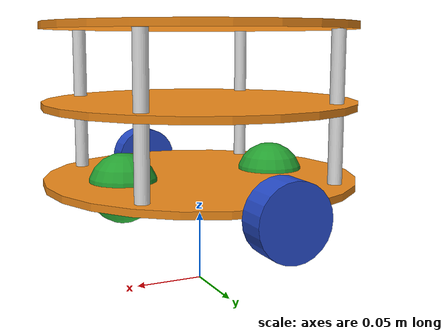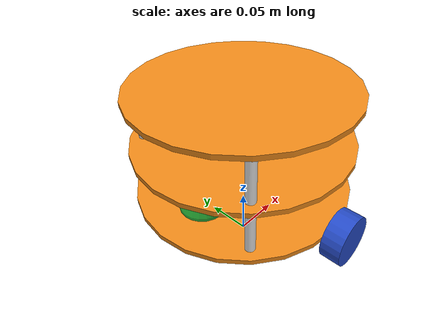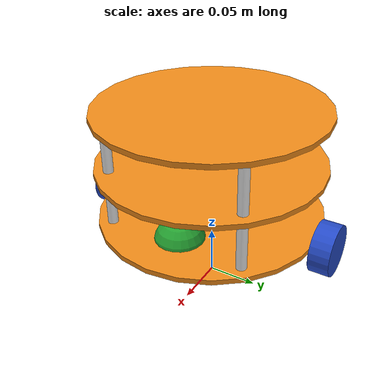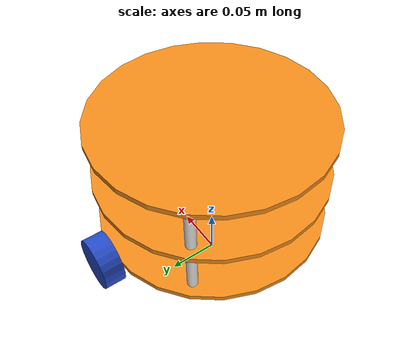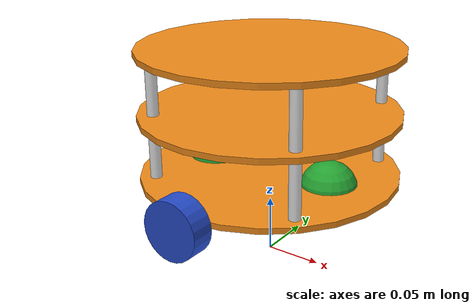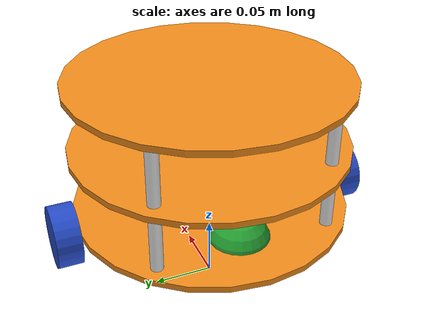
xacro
<?xml version="1.0"?>
<robot xmlns:xacro="http://www.ros.org/wiki/xacro">
    <!--
        ##################################################
            include other xacro files
        ##################################################
    -->

    <xacro:include filename="robot_parts/base_plate.xacro"/>
    <xacro:include filename="robot_parts/pillar.xacro"/>
    <xacro:include filename="robot_parts/drive_wheel.xacro"/>
    <xacro:include filename="robot_parts/caster_wheel.xacro"/>

    <!--
        ##################################################
            Base Link
        ##################################################
    -->

    <link name="base_link"/>

    <!--
        ##################################################
            Base Footprint Link
        ##################################################
    -->

    <joint name="base_footprint_joint" type="fixed">
        <parent link="base_link"/>
        <child link="base_footprint"/>
        <origin xyz="0 0 0" rpy="0 0 0"/>
    </joint>

    <link name="base_footprint"/>

    <xacro:robot_base_plate
        parent="base_link"
        child="first_base_plate_link"
        x="-0.1143" y="0" z="0.075"
        row="0" pitch="0" yaw="0"
    />

    <xacro:robot_base_plate
        parent="first_base_plate_link"
        child="second_base_plate_link"
        x="0" y="0" z="0.0558"
        row="0" pitch="0" yaw="0"
    />

    <xacro:robot_base_plate
        parent="second_base_plate_link"
        child="third_base_plate_link"
        x="0" y="0" z="0.0558"
        row="0" pitch="0" yaw="0"
    />

    <!--
        ##################################################
            Pillar offset variables
        ##################################################
    -->

    <xacro:property name="pillar_x_front" value="0.1851"/>
    <xacro:property name="pillar_x_back" value="0.0435"/>
    <xacro:property name="pillar_y_offset" value="0.0708"/>
    <xacro:property name="pillar_z_offset" value="0.005"/>

    <!--
        ##################################################
            Pillars for Base Plate 0
        ##################################################
    -->

    <xacro:robot_pillar
        parent="first_base_plate_link"
        child="first_base_plate_front_right_pillar_link"
        x="${pillar_x_front}" y="${pillar_y_offset}" z="${pillar_z_offset}"
        row="0" pitch="0" yaw="0"
    />

    <xacro:robot_pillar
        parent="first_base_plate_link"
        child="first_base_plate_front_left_pillar_link"
        x="${pillar_x_front}" y="${-pillar_y_offset}" z="${pillar_z_offset}"
        row="0" pitch="0" yaw="0"
    />

    <xacro:robot_pillar
        parent="first_base_plate_link"
        child="first_base_plate_back_right_pillar_link"
        x="${pillar_x_back}" y="${pillar_y_offset}" z="${pillar_z_offset}"
        row="0" pitch="0" yaw="0"
    />

    <xacro:robot_pillar
        parent="first_base_plate_link"
        child="first_base_plate_back_left_pillar_link"
        x="${pillar_x_back}" y="${-pillar_y_offset}" z="${pillar_z_offset}"
        row="0" pitch="0" yaw="0"
    />

    <!--
        ##################################################
            Pillars for Base Plate 1
        ##################################################
    -->

    <xacro:robot_pillar
        parent="second_base_plate_link"
        child="second_base_plate_front_right_pillar_link"
        x="${pillar_x_front}" y="${pillar_y_offset}" z="${pillar_z_offset}"
        row="0" pitch="0" yaw="0"
    />

    <xacro:robot_pillar
        parent="second_base_plate_link"
        child="second_base_plate_front_left_pillar_link"
        x="${pillar_x_front}" y="${-pillar_y_offset}" z="${pillar_z_offset}"
        row="0" pitch="0" yaw="0"
    />

    <xacro:robot_pillar
        parent="second_base_plate_link"
        child="second_base_plate_back_right_pillar_link"
        x="${pillar_x_back}" y="${pillar_y_offset}" z="${pillar_z_offset}"
        row="0" pitch="0" yaw="0"
    />

    <xacro:robot_pillar
        parent="second_base_plate_link"
        child="second_base_plate_back_left_pillar_link"
        x="${pillar_x_back}" y="${-pillar_y_offset}" z="${pillar_z_offset}"
        row="0" pitch="0" yaw="0"
    />

    <!--
        ##################################################
            Drive Wheels
        ##################################################
    -->

    <xacro:robot_wheel
        parent="base_link"
        child="left_wheel_link"
        x="0" y="0.124" z="0.075"
        row="${-pi/2}" pitch="0" yaw="0"
        a="0" b="0" c="1"
    />

    <xacro:robot_wheel
        parent="base_link"
        child="right_wheel_link"
        x="0" y="-0.124" z="0.075"
        row="${pi/2}" pitch="0" yaw="0"
        a="0" b="0" c="-1"
    />

    <xacro:robot_caster_wheel
        parent="first_base_plate_link"
        child="front_caster_wheel_link"
        x="0.174" y="0" z="0"
    />

    <xacro:robot_caster_wheel
        parent="first_base_plate_link"
        child="back_caster_wheel_link"
        x="0.0546" y="0" z="0"
    />

</robot>

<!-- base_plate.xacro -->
<robot xmlns:xacro="http://www.ros.org/wiki/xacro">
    <!-- user-defined parameters for the base plate -->
    <xacro:property name="plate_radius" value="0.1143"/>
    <xacro:property name="plate_length" value="0.005"/>
    <xacro:property name="plate_mass" value="0.5"/>
    <xacro:property name="I_plate" value="${(1/12) * (plate_mass) * ((3 * plate_radius * plate_radius) + (plate_length * plate_length))}"/>
    <xacro:property name="Iz_plate" value="${(1/2) * (plate_mass) * (plate_radius * plate_radius)}"/>

    <!-- base plate with user-defined parameters -->
    <xacro:macro name="robot_base_plate" params="parent child x y z row pitch yaw">

        <!-- joint -->
        <joint name="${child}_joint" type="fixed">
            <parent link="${parent}"/>
            <child link="${child}"/>
            <origin xyz="${x} ${y} ${z}" rpy="${row} ${pitch} ${yaw}"/>
        </joint>

        <!-- link -->
        <link name="${child}">
            <!-- visual -->
            <visual>
                <origin xyz="${plate_radius} 0 ${plate_length/2}" rpy="0 0 0"/>
                <geometry>
                    <cylinder radius="${plate_radius}" length="${plate_length}"/>
                </geometry>
                <material name="orange"/>
            </visual>

            <!-- collision -->
            <collision>
                <origin xyz="${plate_radius} 0 ${plate_length/2}" rpy="0 0 0"/>
                <geometry>
                    <cylinder radius="${plate_radius}" length="${plate_length}"/>
                </geometry>
            </collision>

            <!-- inertia -->
            <inertial>
                <origin xyz="${plate_radius} 0 ${plate_length/2}" rpy="0 0 0"/>
                <mass value="${plate_mass}"/>
                <inertia ixx="${I_plate}"
                        ixy="0.0"
                        ixz="0.0"
                        iyy="${I_plate}"
                        iyz="0.0"
                        izz="${Iz_plate}"/>
            </inertial>
        </link>

        <gazebo reference="${child}">
            <material>Gazebo/Orange</material>
        </gazebo>
    </xacro:macro>

</robot>

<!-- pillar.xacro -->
<robot xmlns:xacro="http://www.ros.org/wiki/xacro">
    <!-- user-defined parameters for the pillar -->
    <xacro:property name="pillar_radius" value="0.005"/>
    <xacro:property name="pillar_length" value="0.0508"/>
    <xacro:property name="pillar_mass" value="0.1"/>
    <xacro:property name="I_pillar" value="${(1/12) * (pillar_mass) * ((3 * pillar_radius * pillar_radius) + (pillar_length * pillar_length))}"/>
    <xacro:property name="Iz_pillar" value="${(1/2) * (pillar_mass) * (pillar_radius * pillar_radius)}"/>

    <!-- pillar with user-defined parameters -->
    <xacro:macro name="robot_pillar" params="parent child x y z row pitch yaw">
        <!-- joint -->
        <joint name="${child}_joint" type="fixed">
            <parent link="${parent}"/>
            <child link="${child}"/>
            <origin xyz="${x} ${y} ${z}" rpy="${row} ${pitch} ${yaw}"/>
        </joint>

        <!-- link -->
        <link name="${child}">
            <!-- visual -->
            <visual>
                <origin xyz="0 0 ${pillar_length/2}" rpy="0 0 0"/>
                <geometry>
                    <cylinder radius="${pillar_radius}" length="${pillar_length}"/>
                </geometry>
                <material name="white"/>
            </visual>

            <!-- collision -->
            <collision>
                <origin xyz="0 0 ${pillar_length/2}" rpy="0 0 0"/>
                <geometry>
                    <cylinder radius="${pillar_radius}" length="${pillar_length}"/>
                </geometry>
            </collision>

            <!-- inertia -->
            <inertial>
                <origin xyz="0 0 ${pillar_length/2}" rpy="0 0 0"/>
                <mass value="${pillar_mass}"/>
                <inertia ixx="${I_pillar}"
                        ixy="0.0"
                        ixz="0.0"
                        iyy="${I_pillar}"
                        iyz="0.0"
                        izz="${Iz_pillar}"/>
            </inertial>
        </link>

        <gazebo reference="${child}">
            <material>Gazebo/White</material>
        </gazebo>
    </xacro:macro>

</robot>

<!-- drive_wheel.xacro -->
<robot xmlns:xacro="http://www.ros.org/wiki/xacro">
    <!-- user-defined parameters for the wheel -->
    <xacro:property name="wheel_radius" value="0.025"/>
    <xacro:property name="wheel_length" value="0.02"/>
    <xacro:property name="wheel_mass" value="0.1"/>
    <xacro:property name="collision_radius" value="0.025"/>
    <xacro:property name="I_wheel" value="${(1/12) * (wheel_mass) * ((3 * wheel_radius * wheel_radius) + (wheel_length * wheel_length))}"/>
    <xacro:property name="Iz_wheel" value="${(1/2) * (wheel_mass) * (wheel_radius * wheel_radius)}"/>

    <!-- wheel with user-defined parameters -->
    <xacro:macro name="robot_wheel" params="parent child x y z row pitch yaw a b c">
        <!-- joint -->
        <joint name="${parent}_to_${child}_joint" type="continuous">
            <parent link="${parent}"/>
            <child link="${child}"/>
            <origin xyz="${x} ${y} ${z}" rpy="${row} ${pitch} ${yaw}"/>
            <axis xyz="${a} ${b} ${c}"/>
            <limit effort="10.0" velocity="40.0"/>
        </joint>

        <!-- link -->
        <link name="${child}">
            <!-- visual -->
            <visual>
                <origin xyz="0 0 0" rpy="0 0 0"/>
                <geometry>
                    <cylinder radius="${wheel_radius}" length="${wheel_length}"/>
                </geometry>
                <material name="blue"/>
            </visual>

            <!-- collision -->
            <collision>
                <origin xyz="0 0 0" rpy="0 0 0"/>
                <geometry>
                    <sphere radius="${collision_radius}"/>
                </geometry>
            </collision>

            <!-- inertia -->
            <inertial>
                <origin xyz="0 0 0" rpy="0 0 0"/>
                <mass value="${wheel_mass}"/>
                <inertia ixx="${I_wheel}"
                        ixy="0.0"
                        ixz="0.0"
                        iyy="${I_wheel}"
                        iyz="0.0"
                        izz="${Iz_wheel}"/>
            </inertial>
        </link>

        <gazebo reference="${child}">
            <material>Gazebo/Blue</material>
        </gazebo>
    </xacro:macro>

</robot>

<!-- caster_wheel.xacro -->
<robot xmlns:xacro="http://www.ros.org/wiki/xacro">
    <!-- user-defined parameters for the wheel -->
    <xacro:property name="wheel_radius" value="0.025"/>
    <xacro:property name="wheel_mass" value="0.1"/>
    <xacro:property name="I_wheel" value="${(2/5) * (wheel_mass) * (wheel_radius * wheel_radius)}"/>

    <!-- wheel with user-defined parameters -->
    <xacro:macro name="robot_caster_wheel" params="parent child x y z">
        <!-- joint -->
        <joint name="${parent}_to_${child}_joint" type="fixed">
            <parent link="${parent}"/>
            <child link="${child}"/>
            <origin xyz="${x} ${y} ${z}" rpy="0 0 0"/>
        </joint>

        <!-- link -->
        <link name="${child}">
            <!-- visual -->
            <visual>
                <origin xyz="0 0 0" rpy="0 0 0"/>
                <geometry>
                    <sphere radius="${wheel_radius}"/>
                </geometry>
                <material name="green"/>
            </visual>

            <!-- collision -->
            <collision>
                <origin xyz="0 0 0" rpy="0 0 0"/>
                <geometry>
                    <sphere radius="${wheel_radius}"/>
                </geometry>
            </collision>

            <!-- inertia -->
            <inertial>
                <origin xyz="0 0 0" rpy="0 0 0"/>
                <mass value="${wheel_mass}"/>
                <inertia ixx="${I_wheel}"
                        ixy="0.0"
                        ixz="0.0"
                        iyy="${I_wheel}"
                        iyz="0.0"
                        izz="${I_wheel}"/>
            </inertial>
        </link>

        <gazebo reference="${child}">
            <material>Gazebo/Green</material>
            <mu1 value="0.001"/>
            <mu2 value="0.001"/>
        </gazebo>
    </xacro:macro>

</robot>
